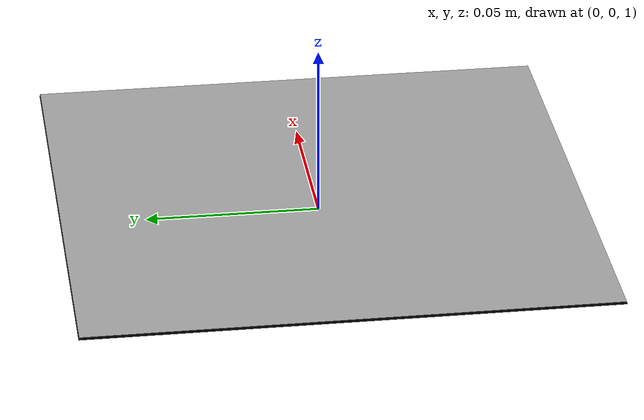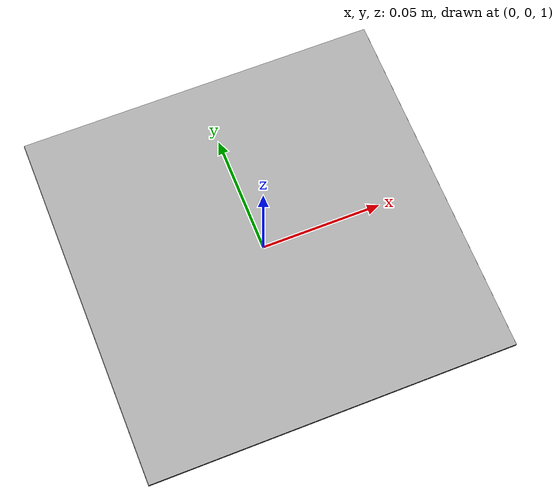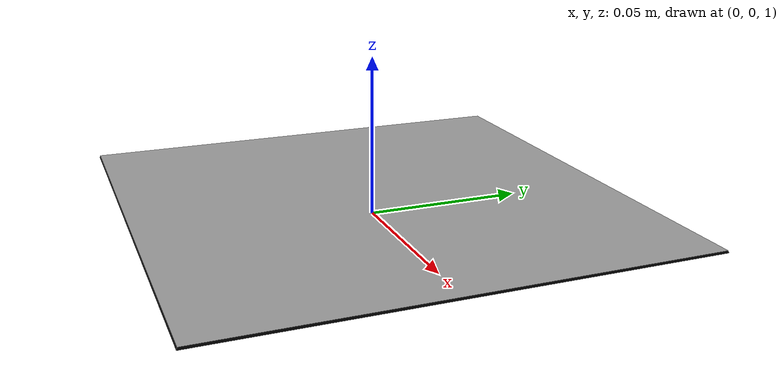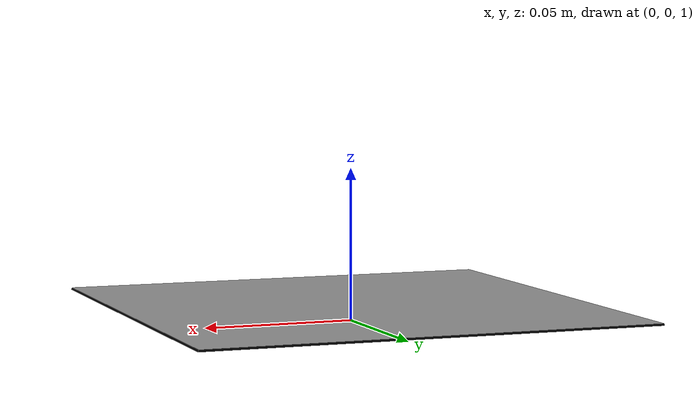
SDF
<?xml version="1.0"?>
<sdf version="1.6">
  <model name="aruco_302">
    <pose>0 0 1.005 0 0 0</pose>  <!-- Elevacion de un metro-->
    <static>true</static>
    <link name="link">

      <!-- Visualización del modelo -->
      <visual name="visual">
        <geometry>
          <mesh>
            <uri>model://aruco_302/meshes/aruco_15_x_15.dae</uri>
            <scale>1 1 1</scale>
          </mesh>
        </geometry>
      </visual>

      <!-- Colisión usando el mismo modelo DAE -->

    </link>
  </model>
</sdf>
